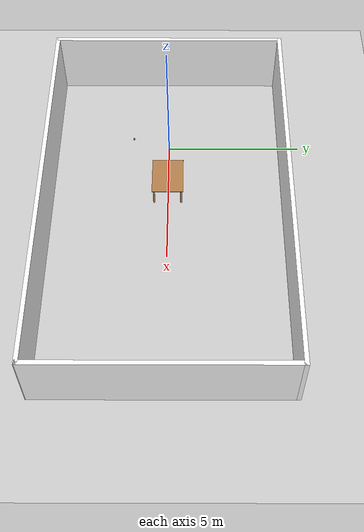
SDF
<sdf version="1.7">
 <world name="default">
  <light name="sun" type="directional">
   <pose>0 0 10 0 -0 0</pose>
   <diffuse>0.8 0.8 0.8 1</diffuse>
   <specular>0.2 0.2 0.2 1</specular>
   <attenuation>
    <range>1000</range>
    <constant>0.9</constant>
    <linear>0.01</linear>
    <quadratic>0.001</quadratic>
   </attenuation>
   <direction>-0.5 0.1 -0.9</direction>
   <spot><inner_angle>0</inner_angle><outer_angle>0</outer_angle><falloff>0</falloff></spot>
  </light>
  <model name="ground_plane">
   <static>1</static>
   <link name="link">
    <collision name="collision">
     <geometry><plane><normal>0 0 1</normal><size>100 100</size></plane></geometry>
     <surface>
      <contact><collide_bitmask>65535</collide_bitmask></contact>
      <friction><ode><mu>100</mu><mu2>50</mu2></ode></friction>
     </surface>
    </collision>
    <visual name="visual">
     <cast_shadows>0</cast_shadows>
     <geometry><plane><normal>0 0 1</normal><size>100 100</size></plane></geometry>
     <material>
      <script><uri>file://media/materials/scripts/gazebo.material</uri><name>Gazebo/Grey</name></script>
     </material>
    </visual>
   </link>
  </model>
  <gravity>0 0 -9.8</gravity>
  <magnetic_field>6e-06 2.3e-05 -4.2e-05</magnetic_field>
  <atmosphere type="adiabatic"/>
  <physics type="ode">
   <max_step_size>0.001</max_step_size>
   <real_time_factor>1</real_time_factor>
   <real_time_update_rate>1000</real_time_update_rate>
  </physics>
  <scene><ambient>0.4 0.4 0.4 1</ambient><background>0.7 0.7 0.7 1</background><shadows>1</shadows></scene>
  <spherical_coordinates>
   <surface_model>EARTH_WGS84</surface_model>
   <latitude_deg>0</latitude_deg>
   <longitude_deg>0</longitude_deg>
   <elevation>0</elevation>
   <heading_deg>0</heading_deg>
  </spherical_coordinates>
  <model name="table">
   <static>1</static>
   <link name="link">
    <collision name="surface">
     <pose>0 0 0.7 0 -0 0</pose>
     <geometry><box><size>1.5 1.15 0.035</size></box></geometry>
     <surface><friction><ode><mu>0.6</mu><mu2>0.6</mu2></ode></friction></surface>
    </collision>
    <visual name="visual1">
     <pose>0 0 0.7 0 -0 0</pose>
     <geometry><box><size>1.5 1.15 0.035</size></box></geometry>
     <material>
      <script><uri>file://media/materials/scripts/gazebo.material</uri><name>Gazebo/Wood</name></script>
     </material>
    </visual>
    <collision name="front_left_leg">
     <pose>0.68 0.5 0.35 0 -0 0</pose>
     <geometry><cylinder><radius>0.035</radius><length>0.7</length></cylinder></geometry>
    </collision>
    <visual name="front_left_leg">
     <pose>0.68 0.5 0.35 0 -0 0</pose>
     <geometry><cylinder><radius>0.035</radius><length>0.7</length></cylinder></geometry>
     <material>
      <script><uri>file://media/materials/scripts/gazebo.material</uri><name>Gazebo/Wood</name></script>
     </material>
    </visual>
    <collision name="front_right_leg">
     <pose>0.68 -0.5 0.35 0 -0 0</pose>
     <geometry><cylinder><radius>0.035</radius><length>0.7</length></cylinder></geometry>
    </collision>
    <visual name="front_right_leg">
     <pose>0.68 -0.5 0.35 0 -0 0</pose>
     <geometry><cylinder><radius>0.035</radius><length>0.7</length></cylinder></geometry>
     <material>
      <script><uri>file://media/materials/scripts/gazebo.material</uri><name>Gazebo/Wood</name></script>
     </material>
    </visual>
    <collision name="back_right_leg">
     <pose>-0.68 -0.5 0.35 0 -0 0</pose>
     <geometry><cylinder><radius>0.035</radius><length>0.7</length></cylinder></geometry>
    </collision>
    <visual name="back_right_leg">
     <pose>-0.68 -0.5 0.35 0 -0 0</pose>
     <geometry><cylinder><radius>0.035</radius><length>0.7</length></cylinder></geometry>
     <material>
      <script><uri>file://media/materials/scripts/gazebo.material</uri><name>Gazebo/Wood</name></script>
     </material>
    </visual>
    <collision name="back_left_leg">
     <pose>-0.68 0.5 0.35 0 -0 0</pose>
     <geometry><cylinder><radius>0.035</radius><length>0.7</length></cylinder></geometry>
    </collision>
    <visual name="back_left_leg">
     <pose>-0.68 0.5 0.35 0 -0 0</pose>
     <geometry><cylinder><radius>0.035</radius><length>0.7</length></cylinder></geometry>
     <material>
      <script><uri>file://media/materials/scripts/gazebo.material</uri><name>Gazebo/Wood</name></script>
     </material>
    </visual>
   </link>
   <pose>1.87562 -0.009161 0 0 -0 0</pose>
  </model>
  <model name="Untitled">
   <pose>3.4027 -0.028703 0 0 -0 0</pose>
   <link name="Wall_13">
    <collision name="Wall_13_Collision">
     <geometry><box><size>8.75 0.15 2.5</size></box></geometry>
     <pose>0 0 1.25 0 -0 0</pose>
    </collision>
    <visual name="Wall_13_Visual">
     <pose>0 0 1.25 0 -0 0</pose>
     <geometry><box><size>8.75 0.15 2.5</size></box></geometry>
     <material>
      <script><uri>file://media/materials/scripts/gazebo.material</uri><name>Gazebo/USTC</name></script>
      <ambient>1 1 1 1</ambient>
     </material>
     <meta><layer>0</layer></meta>
    </visual>
    <pose>6.925 0.011565 0 0 -0 1.5708</pose>
   </link>
   <link name="Wall_14">
    <collision name="Wall_14_Collision">
     <geometry><box><size>14 0.15 2.5</size></box></geometry>
     <pose>0 0 1.25 0 -0 0</pose>
    </collision>
    <visual name="Wall_14_Visual">
     <pose>0 0 1.25 0 -0 0</pose>
     <geometry><box><size>14 0.15 2.5</size></box></geometry>
     <material>
      <script><uri>file://media/materials/scripts/gazebo.material</uri><name>Gazebo/USTC</name></script>
      <ambient>1 1 1 1</ambient>
     </material>
     <meta><layer>0</layer></meta>
    </visual>
    <pose>-0 4.31156 0 0 -0 3.14159</pose>
   </link>
   <link name="Wall_15">
    <collision name="Wall_15_Collision">
     <geometry><box><size>8.75 0.15 2.5</size></box></geometry>
     <pose>0 0 1.25 0 -0 0</pose>
    </collision>
    <visual name="Wall_15_Visual">
     <pose>0 0 1.25 0 -0 0</pose>
     <geometry><box><size>8.75 0.15 2.5</size></box></geometry>
     <material>
      <script><uri>file://media/materials/scripts/gazebo.material</uri><name>Gazebo/USTC</name></script>
      <ambient>1 1 1 1</ambient>
     </material>
     <meta><layer>0</layer></meta>
    </visual>
    <pose>-6.925 0.011565 0 0 -0 -1.5708</pose>
   </link>
   <link name="Wall_4">
    <collision name="Wall_4_Collision">
     <geometry><box><size>14 0.15 2.5</size></box></geometry>
     <pose>0 0 1.25 0 -0 0</pose>
    </collision>
    <visual name="Wall_4_Visual">
     <pose>0 0 1.25 0 -0 0</pose>
     <geometry><box><size>14 0.15 2.5</size></box></geometry>
     <material>
      <script><uri>file://media/materials/scripts/gazebo.material</uri><name>Gazebo/USTC</name></script>
      <ambient>1 1 1 1</ambient>
     </material>
     <meta><layer>0</layer></meta>
    </visual>
    <pose>-0 -4.31157 0 0 -0 0</pose>
   </link>
   <link name="Wall_7">
    <collision name="Wall_7_Collision">
     <geometry><box><size>0.15 0.15 2.5</size></box></geometry>
     <pose>0 0 1.25 0 -0 0</pose>
    </collision>
    <visual name="Wall_7_Visual">
     <pose>0 0 1.25 0 -0 0</pose>
     <geometry><box><size>0.15 0.15 2.5</size></box></geometry>
     <material>
      <script><uri>file://media/materials/scripts/gazebo.material</uri><name>Gazebo/Grey</name></script>
      <ambient>1 1 1 1</ambient>
     </material>
     <meta><layer>0</layer></meta>
    </visual>
    <pose>6.925 -4.28843 0 0 -0 0</pose>
   </link>
   <static>1</static>
  </model>
  <model name="cube_green_clone">
   <static>0</static>
   <link name="link">
    <inertial>
     <mass>0.05</mass>
     <inertia><ixx>0.001</ixx><ixy>0</ixy><ixz>0</ixz><iyy>0.001</iyy><iyz>0</iyz><izz>0.001</izz></inertia>
    </inertial>
    <collision name="collision">
     <geometry><box><size>0.06 0.06 0.06</size></box></geometry>
     <surface>
      <friction><ode><mu>5</mu><mu2>5</mu2></ode></friction>
      <contact><ode><kp>1e+06</kp><kd>100</kd><max_vel>1</max_vel><min_depth>0.002</min_depth></ode></contact>
     </surface>
    </collision>
    <visual name="visual">
     <geometry><box><size>0.06 0.06 0.06</size></box></geometry>
     <material>
      <script><uri>file://media/materials/scripts/gazebo.material</uri><name>Gazebo/Green</name></script>
     </material>
    </visual>
    <velocity_decay><linear>0</linear><angular>0</angular></velocity_decay>
   </link>
   <pose>0.133971 -1.31579 0.755046 0 -0 0</pose>
  </model>
 </world>
</sdf>
